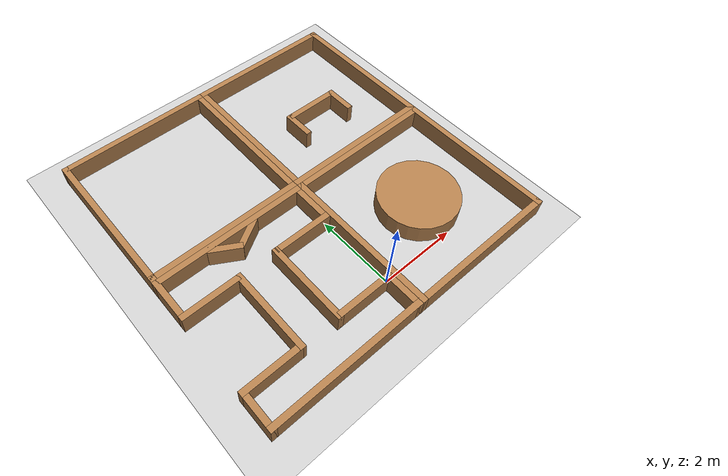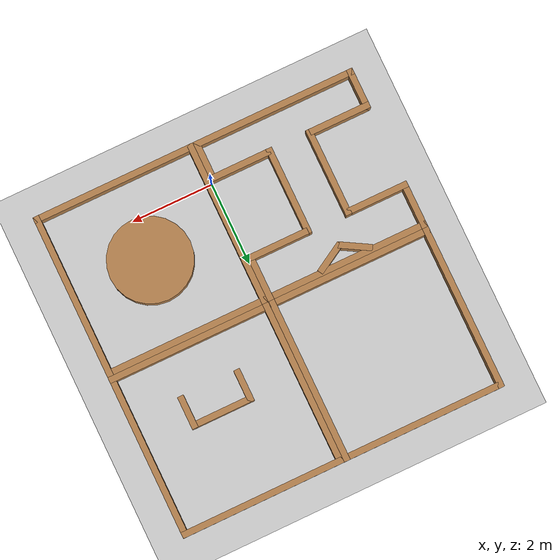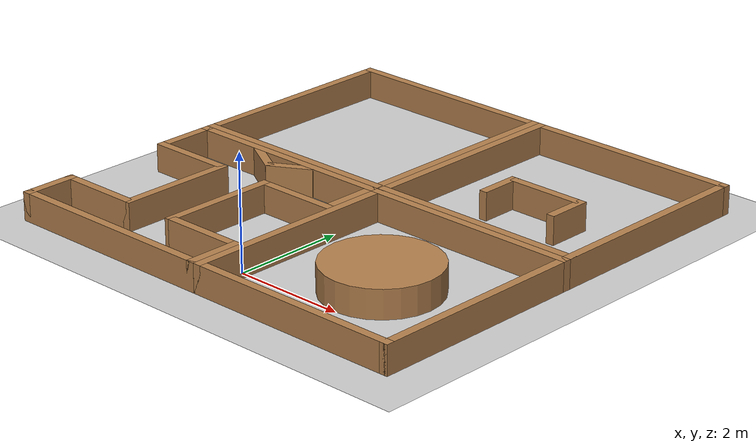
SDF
<sdf version="1.6">
 <world name="default">
  <model name="ground_plane">
   <static>1</static>
   <link name="link">
    <collision name="collision">
     <geometry><plane><normal>0 0 1</normal><size>100 100</size></plane></geometry>
     <surface><friction><ode><mu>100</mu><mu2>50</mu2></ode></friction></surface>
    </collision>
    <visual name="visual">
     <cast_shadows>0</cast_shadows>
     <geometry><plane><normal>0 0 1</normal><size>100 100</size></plane></geometry>
     <material>
      <script><uri>file://media/materials/scripts/gazebo.material</uri><name>Gazebo/Grey</name></script>
     </material>
    </visual>
   </link>
  </model>
  <model name="empty_square">
   <pose>-2 5 0 0 -0 0</pose>
   <link name="Wall_0">
    <collision name="Wall_0_Collision">
     <geometry><box><size>4 0.15 0.5</size></box></geometry>
     <pose>0 0 0.25 0 -0 0</pose>
    </collision>
    <visual name="Wall_0_Visual">
     <pose>0 0 0.25 0 -0 0</pose>
     <geometry><box><size>4 0.15 0.5</size></box></geometry>
     <material>
      <script><uri>file://media/materials/scripts/gazebo.material</uri><name>Gazebo/Wood</name></script>
      <ambient>1 1 1 1</ambient>
     </material>
    </visual>
    <pose>0 1.925 0 0 -0 0</pose>
   </link>
   <link name="Wall_2">
    <collision name="Wall_2_Collision">
     <geometry><box><size>4 0.15 0.5</size></box></geometry>
     <pose>0 0 0.25 0 -0 0</pose>
    </collision>
    <visual name="Wall_2_Visual">
     <pose>0 0 0.25 0 -0 0</pose>
     <geometry><box><size>4 0.15 0.5</size></box></geometry>
     <material>
      <script><uri>file://media/materials/scripts/gazebo.material</uri><name>Gazebo/Wood</name></script>
      <ambient>1 1 1 1</ambient>
     </material>
    </visual>
    <pose>-1.925 0 0 0 0 -1.5708</pose>
   </link>
   <link name="Wall_3">
    <collision name="Wall_3_Collision">
     <geometry><box><size>4 0.15 0.5</size></box></geometry>
     <pose>0 0 0.25 0 -0 0</pose>
    </collision>
    <visual name="Wall_3_Visual">
     <pose>0 0 0.25 0 -0 0</pose>
     <geometry><box><size>4 0.15 0.5</size></box></geometry>
     <material>
      <script><uri>file://media/materials/scripts/gazebo.material</uri><name>Gazebo/Wood</name></script>
      <ambient>1 1 1 1</ambient>
     </material>
    </visual>
    <pose>0 -1.925 0 0 -0 0</pose>
   </link>
   <link name="Wall_4">
    <collision name="Wall_4_Collision">
     <geometry><box><size>4 0.15 0.5</size></box></geometry>
     <pose>0 0 0.25 0 -0 0</pose>
    </collision>
    <visual name="Wall_4_Visual">
     <pose>0 0 0.25 0 -0 0</pose>
     <geometry><box><size>4 0.15 0.5</size></box></geometry>
     <material>
      <script><uri>file://media/materials/scripts/gazebo.material</uri><name>Gazebo/Wood</name></script>
      <ambient>1 1 1 1</ambient>
     </material>
    </visual>
    <pose>1.925 0 0 0 -0 1.5708</pose>
   </link>
   <static>1</static>
  </model>
  <model name="initial_move_away">
   <pose>2 5 0 0 -0 0</pose>
   <link name="Wall_0">
    <collision name="Wall_0_Collision">
     <geometry><box><size>4 0.15 0.5</size></box></geometry>
     <pose>0 0 0.25 0 -0 0</pose>
    </collision>
    <visual name="Wall_0_Visual">
     <pose>0 0 0.25 0 -0 0</pose>
     <geometry><box><size>4 0.15 0.5</size></box></geometry>
     <material>
      <script><uri>file://media/materials/scripts/gazebo.material</uri><name>Gazebo/Wood</name></script>
      <ambient>1 1 1 1</ambient>
     </material>
    </visual>
    <pose>0 1.925 0 0 -0 0</pose>
   </link>
   <link name="Wall_2">
    <collision name="Wall_2_Collision">
     <geometry><box><size>4 0.15 0.5</size></box></geometry>
     <pose>0 0 0.25 0 -0 0</pose>
    </collision>
    <visual name="Wall_2_Visual">
     <pose>0 0 0.25 0 -0 0</pose>
     <geometry><box><size>4 0.15 0.5</size></box></geometry>
     <material>
      <script><uri>file://media/materials/scripts/gazebo.material</uri><name>Gazebo/Wood</name></script>
      <ambient>1 1 1 1</ambient>
     </material>
    </visual>
    <pose>-1.925 0 0 0 0 -1.5708</pose>
   </link>
   <link name="Wall_3">
    <collision name="Wall_3_Collision">
     <geometry><box><size>4 0.15 0.5</size></box></geometry>
     <pose>0 0 0.25 0 -0 0</pose>
    </collision>
    <visual name="Wall_3_Visual">
     <pose>0 0 0.25 0 -0 0</pose>
     <geometry><box><size>4 0.15 0.5</size></box></geometry>
     <material>
      <script><uri>file://media/materials/scripts/gazebo.material</uri><name>Gazebo/Wood</name></script>
      <ambient>1 1 1 1</ambient>
     </material>
    </visual>
    <pose>0 -1.925 0 0 -0 0</pose>
   </link>
   <link name="Wall_4">
    <collision name="Wall_4_Collision">
     <geometry><box><size>4 0.15 0.5</size></box></geometry>
     <pose>0 0 0.25 0 -0 0</pose>
    </collision>
    <visual name="Wall_4_Visual">
     <pose>0 0 0.25 0 -0 0</pose>
     <geometry><box><size>4 0.15 0.5</size></box></geometry>
     <material>
      <script><uri>file://media/materials/scripts/gazebo.material</uri><name>Gazebo/Wood</name></script>
      <ambient>1 1 1 1</ambient>
     </material>
    </visual>
    <pose>1.925 0 0 0 -0 1.5708</pose>
   </link>
   <link name="Wall_5">
    <collision name="Wall_5_Collision">
     <geometry><box><size>1.4 0.15 0.5</size></box></geometry>
     <pose>0 0 0.25 0 -0 0</pose>
    </collision>
    <visual name="Wall_5_Visual">
     <pose>0 0 0.25 0 -0 0</pose>
     <geometry><box><size>1.4 0.15 0.5</size></box></geometry>
     <material>
      <script><uri>file://media/materials/scripts/gazebo.material</uri><name>Gazebo/Wood</name></script>
      <ambient>1 1 1 1</ambient>
     </material>
    </visual>
    <pose>0 -0.2 0 0 -0 0</pose>
   </link>
   <link name="Wall_6">
    <collision name="Wall_6_Collision">
     <geometry><box><size>0.8 0.15 0.5</size></box></geometry>
     <pose>0 0 0.25 0 -0 0</pose>
    </collision>
    <visual name="Wall_6_Visual">
     <pose>0 0 0.25 0 -0 0</pose>
     <geometry><box><size>0.8 0.15 0.5</size></box></geometry>
     <material>
      <script><uri>file://media/materials/scripts/gazebo.material</uri><name>Gazebo/Wood</name></script>
      <ambient>1 1 1 1</ambient>
     </material>
    </visual>
    <pose>0.7 -0.525 0 0 -0 1.5708</pose>
   </link>
   <link name="Wall_7">
    <collision name="Wall_7_Collision">
     <geometry><box><size>0.8 0.15 0.5</size></box></geometry>
     <pose>0 0 0.25 0 -0 0</pose>
    </collision>
    <visual name="Wall_7_Visual">
     <pose>0 0 0.25 0 -0 0</pose>
     <geometry><box><size>0.8 0.15 0.5</size></box></geometry>
     <material>
      <script><uri>file://media/materials/scripts/gazebo.material</uri><name>Gazebo/Wood</name></script>
      <ambient>1 1 1 1</ambient>
     </material>
    </visual>
    <pose>-0.7 -0.525 0 0 -0 1.5708</pose>
   </link>
   <static>1</static>
  </model>
  <model name="left_right_turn">
   <pose>-2 1 0 0 -0 0</pose>
   <link name="Wall_0">
    <collision name="Wall_0_Collision">
     <geometry><box><size>4 0.15 0.5</size></box></geometry>
     <pose>0 0 0.25 0 -0 0</pose>
    </collision>
    <visual name="Wall_0_Visual">
     <pose>0 0 0.25 0 -0 0</pose>
     <geometry><box><size>4 0.15 0.5</size></box></geometry>
     <material>
      <script><uri>file://media/materials/scripts/gazebo.material</uri><name>Gazebo/Wood</name></script>
      <ambient>1 1 1 1</ambient>
     </material>
    </visual>
    <pose>0 1.925 0 0 -0 0</pose>
   </link>
   <link name="Wall_2">
    <collision name="Wall_2_Collision">
     <geometry><box><size>1 0.15 0.5</size></box></geometry>
     <pose>0 0 0.25 0 -0 0</pose>
    </collision>
    <visual name="Wall_2_Visual">
     <pose>0 0 0.25 0 -0 0</pose>
     <geometry><box><size>1 0.15 0.5</size></box></geometry>
     <material>
      <script><uri>file://media/materials/scripts/gazebo.material</uri><name>Gazebo/Wood</name></script>
      <ambient>1 1 1 1</ambient>
     </material>
    </visual>
    <pose>-1.925 1.5 0 0 0 -1.5708</pose>
   </link>
   <link name="Wall_3">
    <collision name="Wall_3_Collision">
     <geometry><box><size>4 0.15 0.5</size></box></geometry>
     <pose>0 0 0.25 0 -0 0</pose>
    </collision>
    <visual name="Wall_3_Visual">
     <pose>0 0 0.25 0 -0 0</pose>
     <geometry><box><size>4 0.15 0.5</size></box></geometry>
     <material>
      <script><uri>file://media/materials/scripts/gazebo.material</uri><name>Gazebo/Wood</name></script>
      <ambient>1 1 1 1</ambient>
     </material>
    </visual>
    <pose>0 -1.925 0 0 -0 0</pose>
   </link>
   <link name="Wall_4">
    <collision name="Wall_4_Collision">
     <geometry><box><size>1 0.15 0.5</size></box></geometry>
     <pose>0 0 0.25 0 -0 0</pose>
    </collision>
    <visual name="Wall_4_Visual">
     <pose>0 0 0.25 0 -0 0</pose>
     <geometry><box><size>1 0.15 0.5</size></box></geometry>
     <material>
      <script><uri>file://media/materials/scripts/gazebo.material</uri><name>Gazebo/Wood</name></script>
      <ambient>1 1 1 1</ambient>
     </material>
    </visual>
    <pose>1.925 1.5 0 0 -0 1.5708</pose>
   </link>
   <link name="Wall_5">
    <collision name="Wall_5_Collision">
     <geometry><box><size>1 0.15 0.5</size></box></geometry>
     <pose>0 0 0.25 0 -0 0</pose>
    </collision>
    <visual name="Wall_5_Visual">
     <pose>0 0 0.25 0 -0 0</pose>
     <geometry><box><size>1 0.15 0.5</size></box></geometry>
     <material>
      <script><uri>file://media/materials/scripts/gazebo.material</uri><name>Gazebo/Wood</name></script>
      <ambient>1 1 1 1</ambient>
     </material>
    </visual>
    <pose>-1.925 -1.5 0 0 0 -1.5708</pose>
   </link>
   <link name="Wall_6">
    <collision name="Wall_6_Collision">
     <geometry><box><size>1 0.15 0.5</size></box></geometry>
     <pose>0 0 0.25 0 -0 0</pose>
    </collision>
    <visual name="Wall_6_Visual">
     <pose>0 0 0.25 0 -0 0</pose>
     <geometry><box><size>1 0.15 0.5</size></box></geometry>
     <material>
      <script><uri>file://media/materials/scripts/gazebo.material</uri><name>Gazebo/Wood</name></script>
      <ambient>1 1 1 1</ambient>
     </material>
    </visual>
    <pose>1.925 -1.5 0 0 -0 1.5708</pose>
   </link>
   <link name="Wall_7">
    <collision name="Wall_7_Collision">
     <geometry><box><size>1.5 0.15 0.5</size></box></geometry>
     <pose>0 0 0.25 0 -0 0</pose>
    </collision>
    <visual name="Wall_7_Visual">
     <pose>0 0 0.25 0 -0 0</pose>
     <geometry><box><size>1.5 0.15 0.5</size></box></geometry>
     <material>
      <script><uri>file://media/materials/scripts/gazebo.material</uri><name>Gazebo/Wood</name></script>
      <ambient>1 1 1 1</ambient>
     </material>
    </visual>
    <pose>-1.25 0.925 0 0 -0 0</pose>
   </link>
   <link name="Wall_8">
    <collision name="Wall_8_Collision">
     <geometry><box><size>1.5 0.15 0.5</size></box></geometry>
     <pose>0 0 0.25 0 -0 0</pose>
    </collision>
    <visual name="Wall_8_Visual">
     <pose>0 0 0.25 0 -0 0</pose>
     <geometry><box><size>1.5 0.15 0.5</size></box></geometry>
     <material>
      <script><uri>file://media/materials/scripts/gazebo.material</uri><name>Gazebo/Wood</name></script>
      <ambient>1 1 1 1</ambient>
     </material>
    </visual>
    <pose>1.25 0.925 0 0 -0 0</pose>
   </link>
   <link name="Wall_9">
    <collision name="Wall_9_Collision">
     <geometry><box><size>1.5 0.15 0.5</size></box></geometry>
     <pose>0 0 0.25 0 -0 0</pose>
    </collision>
    <visual name="Wall_9_Visual">
     <pose>0 0 0.25 0 -0 0</pose>
     <geometry><box><size>1.5 0.15 0.5</size></box></geometry>
     <material>
      <script><uri>file://media/materials/scripts/gazebo.material</uri><name>Gazebo/Wood</name></script>
      <ambient>1 1 1 1</ambient>
     </material>
    </visual>
    <pose>-1.25 -1.075 0 0 -0 0</pose>
   </link>
   <link name="Wall_10">
    <collision name="Wall_10_Collision">
     <geometry><box><size>1.5 0.15 0.5</size></box></geometry>
     <pose>0 0 0.25 0 -0 0</pose>
    </collision>
    <visual name="Wall_10_Visual">
     <pose>0 0 0.25 0 -0 0</pose>
     <geometry><box><size>1.5 0.15 0.5</size></box></geometry>
     <material>
      <script><uri>file://media/materials/scripts/gazebo.material</uri><name>Gazebo/Wood</name></script>
      <ambient>1 1 1 1</ambient>
     </material>
    </visual>
    <pose>1.25 -1.075 0 0 -0 0</pose>
   </link>
   <link name="Wall_11">
    <collision name="Wall_11_Collision">
     <geometry><box><size>2.15 0.15 0.5</size></box></geometry>
     <pose>0 0 0.25 0 -0 0</pose>
    </collision>
    <visual name="Wall_11_Visual">
     <pose>0 0 0.25 0 -0 0</pose>
     <geometry><box><size>2.15 0.15 0.5</size></box></geometry>
     <material>
      <script><uri>file://media/materials/scripts/gazebo.material</uri><name>Gazebo/Wood</name></script>
      <ambient>1 1 1 1</ambient>
     </material>
    </visual>
    <pose>-0.5 -0.075 0 0 0 -1.5708</pose>
   </link>
   <link name="Wall_12">
    <collision name="Wall_12_Collision">
     <geometry><box><size>2.15 0.15 0.5</size></box></geometry>
     <pose>0 0 0.25 0 -0 0</pose>
    </collision>
    <visual name="Wall_12_Visual">
     <pose>0 0 0.25 0 -0 0</pose>
     <geometry><box><size>2.15 0.15 0.5</size></box></geometry>
     <material>
      <script><uri>file://media/materials/scripts/gazebo.material</uri><name>Gazebo/Wood</name></script>
      <ambient>1 1 1 1</ambient>
     </material>
    </visual>
    <pose>0.5 -0.075 0 0 0 -1.5708</pose>
   </link>
   <link name="Wall_13">
    <collision name="Wall_13_Collision">
     <geometry><box><size>0.8 0.15 0.5</size></box></geometry>
     <pose>0 0 0.25 0 -0 0</pose>
    </collision>
    <visual name="Wall_13_Visual">
     <pose>0 0 0.25 0 -0 0</pose>
     <geometry><box><size>0.8 0.15 0.5</size></box></geometry>
     <material>
      <script><uri>file://media/materials/scripts/gazebo.material</uri><name>Gazebo/Wood</name></script>
      <ambient>1 1 1 1</ambient>
     </material>
    </visual>
    <pose>0.31 1.7 0 0 -0 0.5236</pose>
   </link>
   <link name="Wall_14">
    <collision name="Wall_14_Collision">
     <geometry><box><size>0.8 0.15 0.5</size></box></geometry>
     <pose>0 0 0.25 0 -0 0</pose>
    </collision>
    <visual name="Wall_14_Visual">
     <pose>0 0 0.25 0 -0 0</pose>
     <geometry><box><size>0.8 0.15 0.5</size></box></geometry>
     <material>
      <script><uri>file://media/materials/scripts/gazebo.material</uri><name>Gazebo/Wood</name></script>
      <ambient>1 1 1 1</ambient>
     </material>
    </visual>
    <pose>-0.31 1.7 0 0 -0 2.6179</pose>
   </link>
   <static>1</static>
  </model>
  <model name="round_obstacle">
   <pose>2 1 0 0 -0 0</pose>
   <link name="Wall_0">
    <collision name="Wall_0_Collision">
     <geometry><box><size>4 0.15 0.5</size></box></geometry>
     <pose>0 0 0.25 0 -0 0</pose>
    </collision>
    <visual name="Wall_0_Visual">
     <pose>0 0 0.25 0 -0 0</pose>
     <geometry><box><size>4 0.15 0.5</size></box></geometry>
     <material>
      <script><uri>file://media/materials/scripts/gazebo.material</uri><name>Gazebo/Wood</name></script>
      <ambient>1 1 1 1</ambient>
     </material>
    </visual>
    <pose>0 1.925 0 0 -0 0</pose>
   </link>
   <link name="Wall_2">
    <collision name="Wall_2_Collision">
     <geometry><box><size>4 0.15 0.5</size></box></geometry>
     <pose>0 0 0.25 0 -0 0</pose>
    </collision>
    <visual name="Wall_2_Visual">
     <pose>0 0 0.25 0 -0 0</pose>
     <geometry><box><size>4 0.15 0.5</size></box></geometry>
     <material>
      <script><uri>file://media/materials/scripts/gazebo.material</uri><name>Gazebo/Wood</name></script>
      <ambient>1 1 1 1</ambient>
     </material>
    </visual>
    <pose>-1.925 0 0 0 0 -1.5708</pose>
   </link>
   <link name="Wall_3">
    <collision name="Wall_3_Collision">
     <geometry><box><size>4 0.15 0.5</size></box></geometry>
     <pose>0 0 0.25 0 -0 0</pose>
    </collision>
    <visual name="Wall_3_Visual">
     <pose>0 0 0.25 0 -0 0</pose>
     <geometry><box><size>4 0.15 0.5</size></box></geometry>
     <material>
      <script><uri>file://media/materials/scripts/gazebo.material</uri><name>Gazebo/Wood</name></script>
      <ambient>1 1 1 1</ambient>
     </material>
    </visual>
    <pose>0 -1.925 0 0 -0 0</pose>
   </link>
   <link name="Wall_4">
    <collision name="Wall_4_Collision">
     <geometry><box><size>4 0.15 0.5</size></box></geometry>
     <pose>0 0 0.25 0 -0 0</pose>
    </collision>
    <visual name="Wall_4_Visual">
     <pose>0 0 0.25 0 -0 0</pose>
     <geometry><box><size>4 0.15 0.5</size></box></geometry>
     <material>
      <script><uri>file://media/materials/scripts/gazebo.material</uri><name>Gazebo/Wood</name></script>
      <ambient>1 1 1 1</ambient>
     </material>
    </visual>
    <pose>1.925 0 0 0 -0 1.5708</pose>
   </link>
   <link name="obstacle">
    <collision name="obstacle_Collision">
     <geometry><cylinder><radius>1</radius><length>0.5</length></cylinder></geometry>
     <pose>0 0 0.25 0 -0 0</pose>
    </collision>
    <visual name="obstacle_Visual">
     <pose>0 0 0.25 0 -0 0</pose>
     <geometry><cylinder><radius>1</radius><length>0.5</length></cylinder></geometry>
     <material>
      <script><uri>file://media/materials/scripts/gazebo.material</uri><name>Gazebo/Wood</name></script>
      <ambient>1 1 1 1</ambient>
     </material>
    </visual>
    <pose>0 0 0 0 -0 1.5708</pose>
   </link>
   <static>1</static>
  </model>
 </world>
</sdf>
